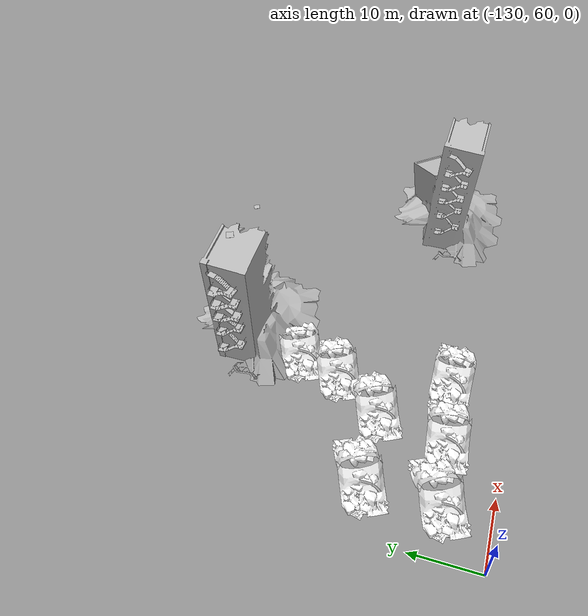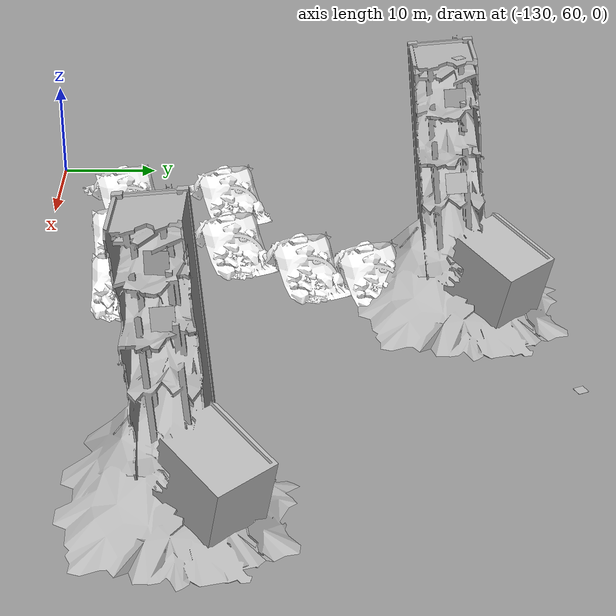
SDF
<sdf version="1.9">
 <world name="default">
  <physics type="ode">
   <max_step_size>0.004</max_step_size>
   <real_time_factor>1.0</real_time_factor>
   <real_time_update_rate>250</real_time_update_rate>
  </physics>
  <gravity>0 0 -9.8</gravity>
  <magnetic_field>6e-06 2.3e-05 -4.2e-05</magnetic_field>
  <atmosphere type="adiabatic"/>
  <scene>
   <grid>false</grid>
   <ambient>0.4 0.4 0.4 1</ambient>
   <background>0.7 0.7 0.7 1</background>
   <shadows>true</shadows>
  </scene>
  <light name="sunUTC" type="directional">
   <pose>0 0 500 0 -0 0</pose>
   <intensity>1</intensity>
   <direction>0.001 0.625 -0.78</direction>
   <diffuse>0.904 0.904 0.904 1</diffuse>
   <specular>0.271 0.271 0.271 1</specular>
   <attenuation><range>2000</range><linear>0</linear><constant>1</constant><quadratic>0</quadratic></attenuation>
   <spot><inner_angle>0</inner_angle><outer_angle>0</outer_angle><falloff>0</falloff></spot>
  </light>
  <spherical_coordinates>
   <surface_model>EARTH_WGS84</surface_model>
   <world_frame_orientation>ENU</world_frame_orientation>
   <latitude_deg>37.412173071650805</latitude_deg>
   <longitude_deg>-121.998878727967</longitude_deg>
   <elevation>38</elevation>
  </spherical_coordinates>
  <include>
   <uri>model://marker_1</uri>
   <name>aruco_marker_1</name>
   <pose>-78.855506896972656 109.81887817382812 3.8079309463500977 2.7093537970018531 1.5707900273389155 -3.1408861898262121</pose>
  </include>
  <include>
   <uri>model://marker_0</uri>
   <name>aruco_marker_0</name>
   <pose>-105.07278442382812 100.77210998535156 23.53996467590332 0.3378409862404616 1.4445500015518304 0.77447798584605232</pose>
  </include>
  <include>
   <uri>model://marker_2</uri>
   <name>aruco_marker_2_1</name>
   <pose>-103.56498718261719 99.733726501464844 19.807872772216797 1.4788500378994207 0.24640299389833475 3.1121099963295582</pose>
  </include>
  <include>
   <uri>model://marker_2</uri>
   <name>aruco_marker_2_2</name>
   <pose>-101.25800323486328 100 12.22029972076416 1.4610009702433753 0.61296222872900497 3.0646405630424032</pose>
  </include>
  <include>
   <uri>model://marker_2</uri>
   <name>aruco_marker_2_3</name>
   <pose>-71.1409912109375 74.0306396484375 20.173868179321289 1.5346099484236408 0.1174869930370713 3.0243400011677379</pose>
  </include>
  <include>
   <uri>model://marker_2</uri>
   <name>aruco_marker_2_4</name>
   <pose>-70.514152526855469 74.3680419921875 15.418899536132812 1.4769700259713585 0.32164600944967187 3.1065600054051101</pose>
  </include>
  <include>
   <uri>model://tunnel_wall_debris</uri>
   <name>tunnelblocker_1</name>
   <pose>-104.06036376953124 92.897933959960938 0 0 0 -1.1310601126575641</pose>
  </include>
  <include>
   <uri>model://tunnel_wall_debris</uri>
   <name>tunnelblocker_2</name>
   <pose>-102.47899627685547 68.933799743652344 0 0 0 -1.5641030510939553</pose>
  </include>
  <include>
   <uri>model://tunnel_wall_debris</uri>
   <name>tunnelblocker_3</name>
   <pose>-121.70696258544922 67.388877868652344 0 0 0 -1.1310601126575641</pose>
  </include>
  <include>
   <uri>model://tunnel_wall_debris</uri>
   <name>tunnelblocker_4</name>
   <pose>-121.66629028320312 78.290420532226548 0 0 0 -1.1310601126575641</pose>
  </include>
  <include>
   <uri>model://tunnel_wall_debris</uri>
   <name>tunnelblocker_5</name>
   <pose>-105.78587341308594 86.396354675292969 0 0 0 -1.1310601126575641</pose>
  </include>
  <include>
   <uri>model://tunnel_wall_debris</uri>
   <name>tunnelblocker_6</name>
   <pose>-112.32290649414064 67.967514038085938 0 0 0 -1.4245999395024393</pose>
  </include>
  <include>
   <uri>model://tunnel_wall_debris</uri>
   <name>tunnelblocker_7</name>
   <pose>-110.60462951660155 79.02187347412108 0 0 0 -1.1310601126575641</pose>
  </include>
  <include>
   <uri>model://collapsed_industrial_building</uri>
   <name>collapsed_industrial_1</name>
   <pose>-101.57592010498047 100.67900085449219 0 0 0 0</pose>
  </include>
  <include>
   <uri>model://collapsed_industrial_building</uri>
   <name>collapsed_industrial_2</name>
   <pose>-68.941596616125167 75.23395412637629 0 0 0 0</pose>
  </include>
 </world>
</sdf>

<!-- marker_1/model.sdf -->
<sdf version="1.6">
  <model name="marker_1">
    <static>true</static>
    <link name="link">
      <visual name="visual">
        <geometry>
          <mesh>
            <uri>model://marker_1/meshes/marker_1.dae</uri>
          <scale>2.0 2.0 2.0</scale></mesh>
        </geometry>
      </visual>
    </link>
  </model>
</sdf>

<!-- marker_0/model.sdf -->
<sdf version="1.6">
  <model name="marker_0">
    <static>true</static>
    <link name="link">
      <visual name="visual">
        <geometry>
          <mesh>
            <uri>model://marker_0/meshes/marker_0.dae</uri>
          <scale>2.0 2.0 2.0</scale></mesh>
        </geometry>
      </visual>
    </link>

    <plugin
    filename="gz-sim-pose-publisher-system"
    name="gz::sim::systems::PosePublisher">
      <publish_link_pose>true</publish_link_pose>
      <use_pose_vector_msg>true</use_pose_vector_msg>
      <publish_nested_model_pose>true</publish_nested_model_pose>
      <static_publisher>true</static_publisher>
      <static_update_frequency>1</static_update_frequency>
    </plugin>

  </model>
</sdf>

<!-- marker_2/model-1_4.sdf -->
<sdf version="1.4">
  <model name="marker_2">
    <static>true</static>
    <link name="link">
      <visual name="visual">
        <geometry>
          <mesh>
            <uri>model://marker_2/meshes/marker_2.dae</uri>
          <scale>4.0 4.0 4.0</scale></mesh>
        </geometry>
      </visual>
    </link>
  </model>
</sdf>

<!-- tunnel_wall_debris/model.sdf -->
<sdf version="1.6">
    <model name="tunnelblocker">
        <static>true</static>
        <link name="base_link">
            <collision name="collision">
                <pose>0 0 0 0 0 0</pose>
                <geometry>
                    <mesh>
                        <uri>meshes/tunnelblocker.dae</uri>
                        <scale>1.0 1.0 1.0</scale>
                    </mesh>
                </geometry>
            </collision>
            <visual name="Walls_visual">
                <geometry>
                    <mesh>
                        <uri>meshes/tunnelblocker.dae</uri>
                        <submesh>
                            <name>Walls</name>
                            <center>false</center>
                        </submesh>
                    </mesh>
                </geometry>
                <material>
                    <diffuse>1.0 1.0 1.0</diffuse>
                    <specular>1.0 1.0 1.0</specular>
                    <pbr>
                        <metal>
                            <albedo_map>materials/textures/Walls_Albedo.jpg</albedo_map>
                            <normal_map>materials/textures/Walls_Normal.jpg</normal_map>
                            <metalness_map>materials/textures/Walls_Metalness.jpg</metalness_map>
                            <roughness_map>materials/textures/Walls_Roughness.jpg</roughness_map>
                        </metal>
                    </pbr>
                </material>
            </visual>
            <visual name="Chainlink_visual">
                <geometry>
                    <mesh>
                        <uri>meshes/tunnelblocker.dae</uri>
                        <submesh>
                            <name>Chainlink</name>
                            <center>false</center>
                        </submesh>
                    </mesh>
                </geometry>
                <material>
                    <diffuse>1.0 1.0 1.0</diffuse>
                    <specular>1.0 1.0 1.0</specular>
                    <pbr>
                        <metal>
                            <albedo_map>materials/textures/Chainlink_Albedo.jpg</albedo_map>
                            <normal_map>materials/textures/Chainlink_Normal.jpg</normal_map>
                            <metalness_map>materials/textures/Chainlink_Metalness.jpg</metalness_map>
                            <roughness_map>materials/textures/Chainlink_Roughness.jpg</roughness_map>
                        </metal>
                    </pbr>
                </material>
            </visual>
            <visual name="Ground_visual">
                <geometry>
                    <mesh>
                        <uri>meshes/tunnelblocker.dae</uri>
                        <submesh>
                            <name>Ground</name>
                            <center>false</center>
                        </submesh>
                    </mesh>
                </geometry>
                <material>
                    <diffuse>1.0 1.0 1.0</diffuse>
                    <specular>1.0 1.0 1.0</specular>
                    <pbr>
                        <metal>
                            <albedo_map>materials/textures/Ground_Albedo.jpg</albedo_map>
                            <normal_map>materials/textures/Ground_Normal.jpg</normal_map>
                            <roughness_map>materials/textures/Ground_Roughness.jpg</roughness_map>
                        </metal>
                    </pbr>
                </material>
            </visual>
            <visual name="RockPile_visual">
                <geometry>
                    <mesh>
                        <uri>meshes/tunnelblocker.dae</uri>
                        <submesh>
                            <name>RockPile</name>
                            <center>false</center>
                        </submesh>
                    </mesh>
                </geometry>
                <material>
                    <diffuse>1.0 1.0 1.0</diffuse>
                    <specular>1.0 1.0 1.0</specular>
                    <pbr>
                        <metal>
                            <albedo_map>materials/textures/RockPile_Albedo.jpg</albedo_map>
                            <normal_map>materials/textures/RockPile_Normal.jpg</normal_map>
                            <roughness_map>materials/textures/RockPile_Roughness.jpg</roughness_map>
                        </metal>
                    </pbr>
                </material>
            </visual>
            <visual name="Rocks_visual">
                <geometry>
                    <mesh>
                        <uri>meshes/tunnelblocker.dae</uri>
                        <submesh>
                            <name>Rocks</name>
                            <center>false</center>
                        </submesh>
                    </mesh>
                </geometry>
                <material>
                    <diffuse>1.0 1.0 1.0</diffuse>
                    <specular>1.0 1.0 1.0</specular>
                    <pbr>
                        <metal>
                            <albedo_map>materials/textures/Rocks_Albedo.jpg</albedo_map>
                            <normal_map>materials/textures/Rocks_Normal.jpg</normal_map>
                            <roughness_map>materials/textures/Rocks_Roughness.jpg</roughness_map>
                        </metal>
                    </pbr>
                </material>
            </visual>
        </link>
    </model>
</sdf>

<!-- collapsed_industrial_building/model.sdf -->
<sdf version="1.6">
    <model name="collapsed_industrial">
        <static>true</static>
        <link name="link">
            <collision name="collision">
                <geometry>
                    <mesh>
                        <uri>model://collapsed_industrial_building/meshes/collapsed_industrial.dae</uri>
                    </mesh>
                </geometry>
            </collision>
            <visual name="visual">
                <geometry>
                    <mesh>
                        <uri>model://collapsed_industrial_building/meshes/collapsed_industrial.dae</uri>
                    </mesh>
                </geometry>
            </visual>
        </link>
    </model>
</sdf>
